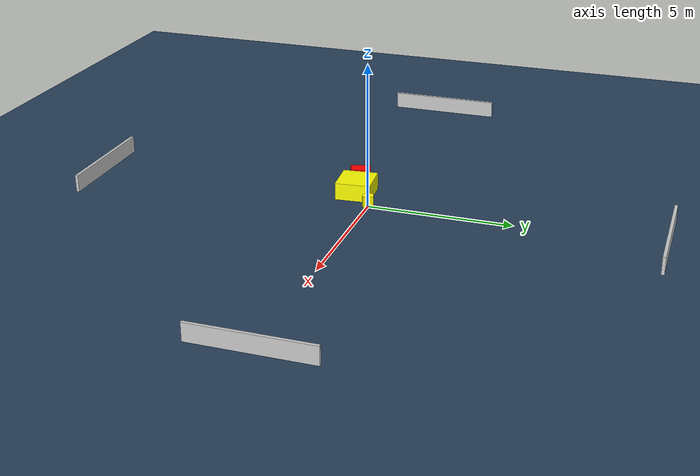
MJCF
<?xml version="1.0" ?>
<mujoco model="generated_environment">
  <option timestep="0.01" integrator="RK4" cone="elliptic"/>
  <default>
    <geom density="1"/>
  </default>
  <asset>
    <texture builtin="gradient" height="3072" name="skybox" rgb1="0.3 0.5 0.7" rgb2="0 0 0" type="skybox" width="512"/>
    <texture builtin="checker" height="300" name="groundplane" rgb1="0.2 0.3 0.4" rgb2="0.1 0.2 0.3" type="2d" width="300"/>
    <material name="groundplane" reflectance="0.2" texrepeat="5 5" texture="groundplane"/>
  </asset>
  <worldbody>
    <light dir="0 0 -1" directional="true" pos="0 0 1.5"/>
    <geom condim="3" friction="0.5 0.005 0.001" material="groundplane" name="floor" pos="0 0 0" size="0 0 0.05" type="plane"/>
    <body name="walls">
      <geom name="wall_1" condim="4" pos="-10.0 0.0 0.3" rgba="0.800000011920929 0.800000011920929 0.800000011920929 1.0" size="0.05 2.0 0.3" type="box"/>
      <geom name="wall_2" condim="4" pos="10.0 0.0 0.3" rgba="0.800000011920929 0.800000011920929 0.800000011920929 1.0" size="0.05 2.0 0.3" type="box"/>
      <geom name="wall_3" condim="4" pos="0.0 -10.0 0.3" rgba="0.800000011920929 0.800000011920929 0.800000011920929 1.0" size="2.0 0.05 0.3" type="box"/>
      <geom name="wall_4" condim="4" pos="0.0 10.0 0.3" rgba="0.800000011920929 0.800000011920929 0.800000011920929 1.0" size="2.0 0.05 0.3" type="box"/>
    </body>
    <body name="robot">
      <joint name="joint_x" type="slide" pos="0 0 0" axis="1 0 0"/>
      <joint name="joint_y" type="slide" pos="0 0 0" axis="0 1 0"/>
      <geom name="robot" type="cylinder" pos="0.0 0.0 0.2" size="0.2 0.2 0.0" mass="5.0" friction="1.0 0.005 0.0001" condim="4" rgba="1.0 1.0 0.0 1.0"/>
    </body>
    <body name="obstacle_1_movable">
      <geom name="obstacle_1_movable" condim="4" pos="-0.8462996061525098 -0.6928297352139663 0.3" euler="0 0 274.764202619765" friction="0.0 0.005 0.001" rgba="1.0 1.0 0.0 1.0" size="0.6108674109585883 0.6215551599166447 0.3" type="box" mass="0.1"/>
      <joint type="free"/>
    </body>
    <body name="obstacle_2_static">
      <geom name="obstacle_2_static" condim="4" pos="-1.7907711728016593 -0.8634912312476879 0.3" euler="0 0 109.62892242027365" friction="0.0 0.005 0.001" rgba="1.0 0.0 0.0 1.0" size="0.34420383106883834 0.2333339714221323 0.3" type="box"/>
    </body>
  </worldbody>
  <actuator>
    <motor name="actuator_x" joint="joint_x" gear="1" ctrlrange="-1 1"/>
    <motor name="actuator_y" joint="joint_y" gear="1" ctrlrange="-1 1"/>
  </actuator>
</mujoco>
